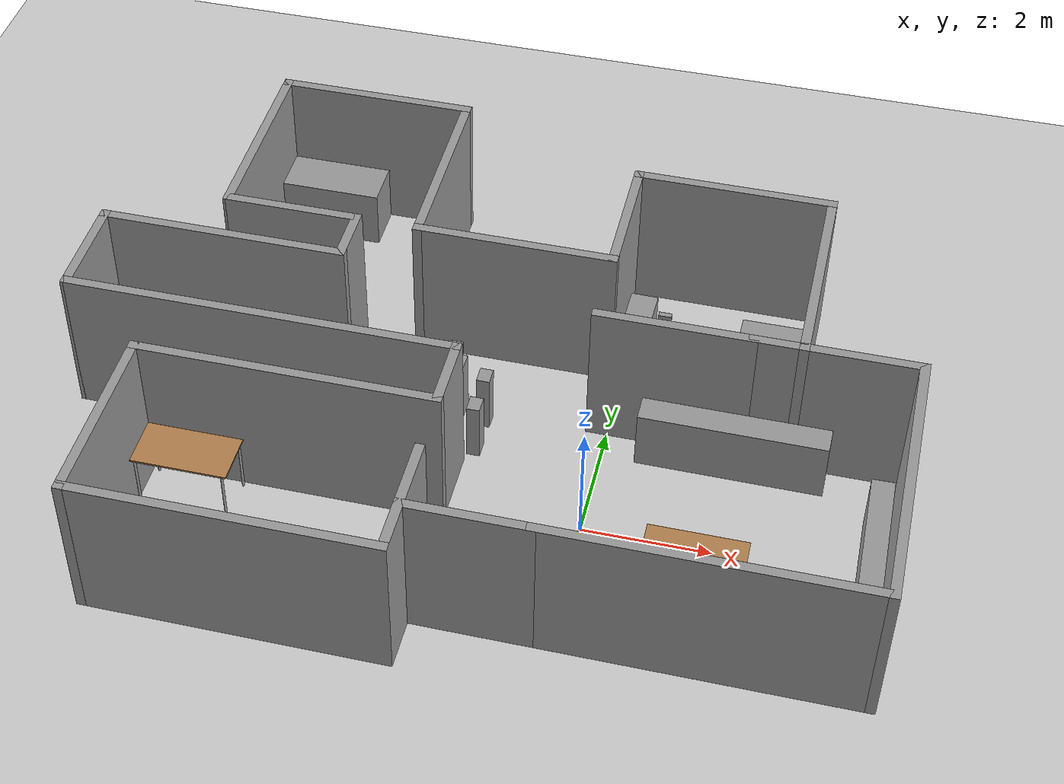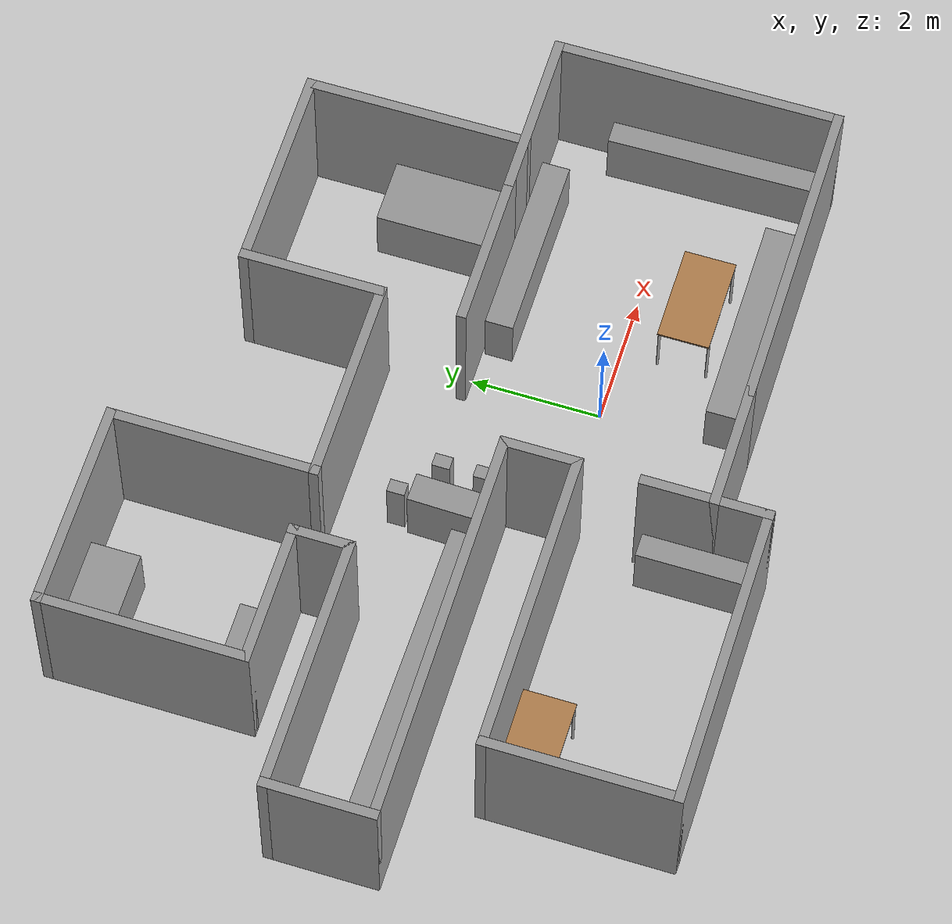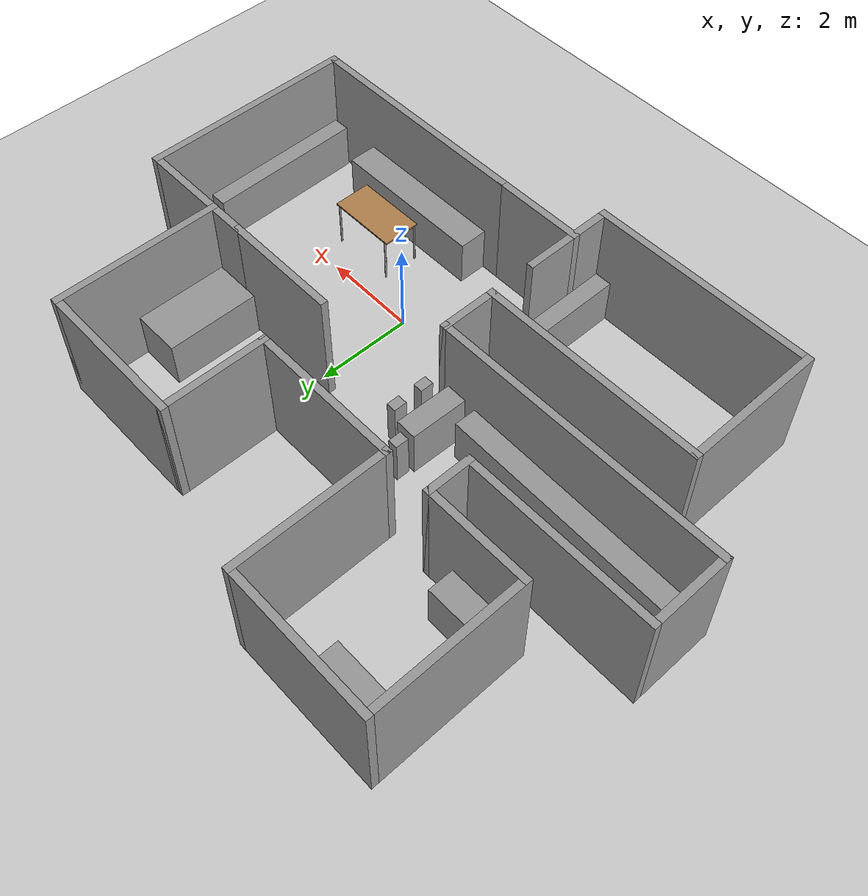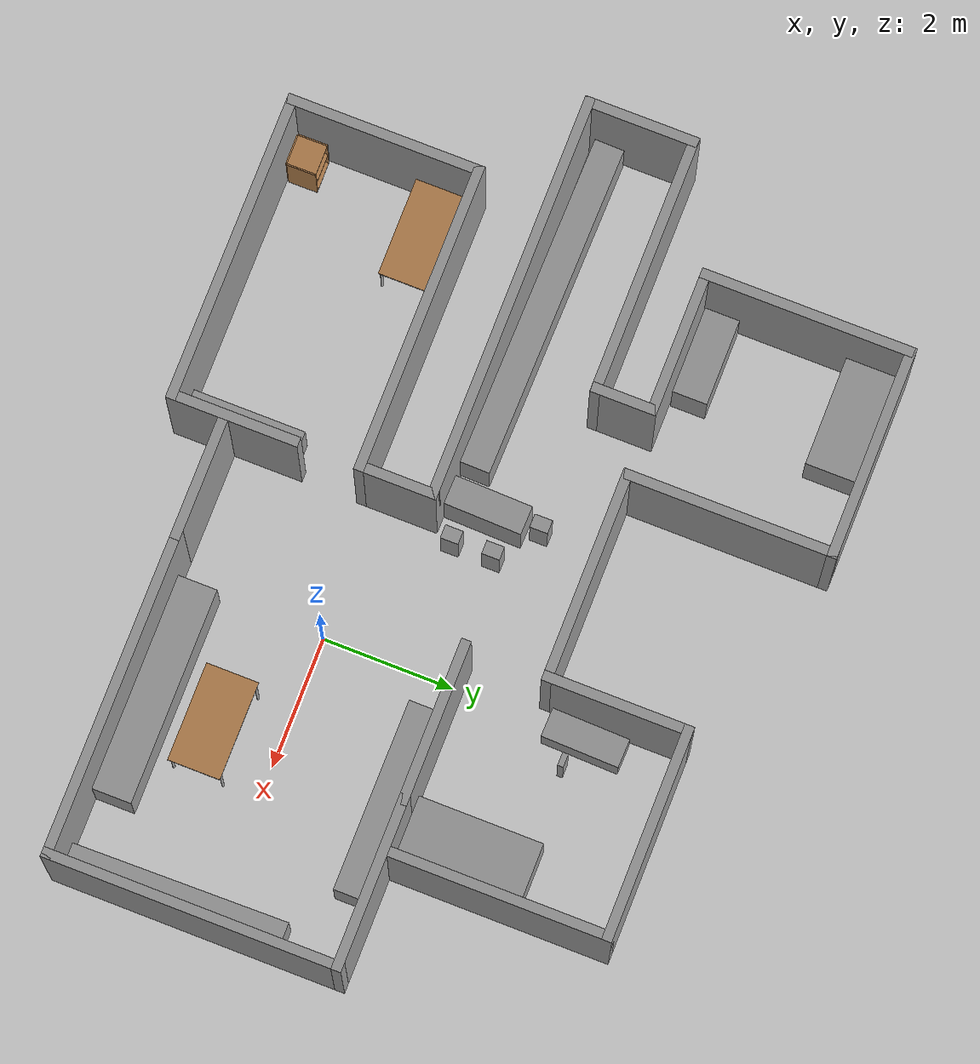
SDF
<sdf version="1.7">
 <world name="default">
  <model name="ground_plane">
   <static>1</static>
   <link name="link">
    <collision name="collision">
     <geometry><plane><normal>0 0 1</normal><size>100 100</size></plane></geometry>
     <surface><friction><ode><mu>100</mu><mu2>50</mu2></ode></friction></surface>
    </collision>
    <visual name="visual">
     <cast_shadows>0</cast_shadows>
     <geometry><plane><normal>0 0 1</normal><size>100 100</size></plane></geometry>
     <material>
      <script><uri>file://media/materials/scripts/gazebo.material</uri><name>Gazebo/Grey</name></script>
     </material>
    </visual>
   </link>
  </model>
  <light name="sun" type="directional">
   <pose>0 0 10 0 -0 0</pose>
   <diffuse>0.8 0.8 0.8 1</diffuse>
   <specular>0.2 0.2 0.2 1</specular>
   <attenuation>
    <range>1000</range>
    <constant>0.9</constant>
    <linear>0.01</linear>
    <quadratic>0.001</quadratic>
   </attenuation>
   <direction>-0.5 0.1 -0.9</direction>
   <spot><inner_angle>0</inner_angle><outer_angle>0</outer_angle><falloff>0</falloff></spot>
  </light>
  <model name="my_house">
   <pose>-1.81661 1.6876 0 0 -0 0</pose>
   <link name="Wall_16">
    <collision name="Wall_16_Collision">
     <geometry><box><size>2.25 0.15 2.5</size></box></geometry>
     <pose>0 0 1.25 0 -0 0</pose>
    </collision>
    <visual name="Wall_16_Visual">
     <pose>0 0 1.25 0 -0 0</pose>
     <geometry><box><size>2.25 0.15 2.5</size></box></geometry>
     <material>
      <script><uri>file://media/materials/scripts/gazebo.material</uri><name>Gazebo/Grey</name></script>
      <ambient>1 1 1 1</ambient>
     </material>
     <meta><layer>0</layer></meta>
    </visual>
    <pose>1.55 2.7 0 0 -0 -1.5708</pose>
   </link>
   <link name="Wall_21">
    <collision name="Wall_21_Collision">
     <geometry><box><size>3.25 0.15 2.5</size></box></geometry>
     <pose>0 0 1.25 0 -0 0</pose>
    </collision>
    <visual name="Wall_21_Visual">
     <pose>0 0 1.25 0 -0 0</pose>
     <geometry><box><size>3.25 0.15 2.5</size></box></geometry>
     <material>
      <script><uri>file://media/materials/scripts/gazebo.material</uri><name>Gazebo/Grey</name></script>
      <ambient>1 1 1 1</ambient>
     </material>
     <meta><layer>0</layer></meta>
    </visual>
    <pose>-0 1.65 0 0 -0 3.14159</pose>
   </link>
   <link name="Wall_23">
    <collision name="Wall_23_Collision">
     <geometry><box><size>3.25 0.15 2.5</size></box></geometry>
     <pose>0 0 1.25 0 -0 0</pose>
    </collision>
    <visual name="Wall_23_Visual">
     <pose>0 0 1.25 0 -0 0</pose>
     <geometry><box><size>3.25 0.15 2.5</size></box></geometry>
     <material>
      <script><uri>file://media/materials/scripts/gazebo.material</uri><name>Gazebo/Grey</name></script>
      <ambient>1 1 1 1</ambient>
     </material>
     <meta><layer>0</layer></meta>
    </visual>
    <pose>-1.55 3.2 0 0 -0 1.5708</pose>
   </link>
   <link name="Wall_24">
    <collision name="Wall_24_Collision">
     <geometry><box><size>3.25 0.15 2.5</size></box></geometry>
     <pose>0 0 1.25 0 -0 0</pose>
    </collision>
    <visual name="Wall_24_Visual">
     <pose>0 0 1.25 0 -0 0</pose>
     <geometry><box><size>3.25 0.15 2.5</size></box></geometry>
     <material>
      <script><uri>file://media/materials/scripts/gazebo.material</uri><name>Gazebo/Grey</name></script>
      <ambient>1 1 1 1</ambient>
     </material>
     <meta><layer>0</layer></meta>
    </visual>
    <pose>-3.1 4.75 0 0 -0 3.14159</pose>
   </link>
   <link name="Wall_25">
    <collision name="Wall_25_Collision">
     <geometry><box><size>3.25 0.15 2.5</size></box></geometry>
     <pose>0 0 1.25 0 -0 0</pose>
    </collision>
    <visual name="Wall_25_Visual">
     <pose>0 0 1.25 0 -0 0</pose>
     <geometry><box><size>3.25 0.15 2.5</size></box></geometry>
     <material>
      <script><uri>file://media/materials/scripts/gazebo.material</uri><name>Gazebo/Grey</name></script>
      <ambient>1 1 1 1</ambient>
     </material>
     <meta><layer>0</layer></meta>
    </visual>
    <pose>-4.65 3.2 0 0 -0 -1.5708</pose>
   </link>
   <link name="Wall_26">
    <collision name="Wall_26_Collision">
     <geometry><box><size>2.25 0.15 2.5</size></box></geometry>
     <pose>0 0 1.25 0 -0 0</pose>
    </collision>
    <visual name="Wall_26_Visual">
     <pose>0 0 1.25 0 -0 0</pose>
     <geometry><box><size>2.25 0.15 2.5</size></box></geometry>
     <material>
      <script><uri>file://media/materials/scripts/gazebo.material</uri><name>Gazebo/Grey</name></script>
      <ambient>1 1 1 1</ambient>
     </material>
     <meta><layer>0</layer></meta>
    </visual>
    <pose>-3.6 1.65 0 0 -0 0</pose>
   </link>
   <link name="Wall_28">
    <collision name="Wall_28_Collision">
     <geometry><box><size>1 0.15 2.5</size></box></geometry>
     <pose>0 0 1.25 0 -0 0</pose>
    </collision>
    <visual name="Wall_28_Visual">
     <pose>0 0 1.25 0 -0 0</pose>
     <geometry><box><size>1 0.15 2.5</size></box></geometry>
     <material>
      <script><uri>file://media/materials/scripts/gazebo.material</uri><name>Gazebo/Grey</name></script>
      <ambient>1 1 1 1</ambient>
     </material>
     <meta><layer>0</layer></meta>
    </visual>
    <pose>-2.55 1.225 0 0 -0 -1.5708</pose>
   </link>
   <link name="Wall_29">
    <collision name="Wall_29_Collision">
     <geometry><box><size>4 0.15 2.5</size></box></geometry>
     <pose>0 0 1.25 0 -0 0</pose>
    </collision>
    <visual name="Wall_29_Visual">
     <pose>0 0 1.25 0 -0 0</pose>
     <geometry><box><size>4 0.15 2.5</size></box></geometry>
     <material>
      <script><uri>file://media/materials/scripts/gazebo.material</uri><name>Gazebo/Grey</name></script>
      <ambient>1 1 1 1</ambient>
     </material>
     <meta><layer>0</layer></meta>
    </visual>
    <pose>-4.475 0.8 0 0 -0 3.14159</pose>
   </link>
   <link name="Wall_30">
    <collision name="Wall_30_Collision">
     <geometry><box><size>1.75 0.15 2.5</size></box></geometry>
     <pose>0 0 1.25 0 -0 0</pose>
    </collision>
    <visual name="Wall_30_Visual">
     <pose>0 0 1.25 0 -0 0</pose>
     <geometry><box><size>1.75 0.15 2.5</size></box></geometry>
     <material>
      <script><uri>file://media/materials/scripts/gazebo.material</uri><name>Gazebo/Grey</name></script>
      <ambient>1 1 1 1</ambient>
     </material>
     <meta><layer>0</layer></meta>
    </visual>
    <pose>-6.4 -0 0 0 -0 -1.5708</pose>
   </link>
   <link name="Wall_31">
    <collision name="Wall_31_Collision">
     <geometry><box><size>6.25 0.15 2.5</size></box></geometry>
     <pose>0 0 1.25 0 -0 0</pose>
    </collision>
    <visual name="Wall_31_Visual">
     <pose>0 0 1.25 0 -0 0</pose>
     <geometry><box><size>6.25 0.15 2.5</size></box></geometry>
     <material>
      <script><uri>file://media/materials/scripts/gazebo.material</uri><name>Gazebo/Grey</name></script>
      <ambient>1 1 1 1</ambient>
     </material>
     <meta><layer>0</layer></meta>
    </visual>
    <pose>-3.35 -0.8 0 0 -0 0</pose>
   </link>
   <link name="Wall_33">
    <collision name="Wall_33_Collision">
     <geometry><box><size>1.25 0.15 2.5</size></box></geometry>
     <pose>0 0 1.25 0 -0 0</pose>
    </collision>
    <visual name="Wall_33_Visual">
     <pose>0 0 1.25 0 -0 0</pose>
     <geometry><box><size>1.25 0.15 2.5</size></box></geometry>
     <material>
      <script><uri>file://media/materials/scripts/gazebo.material</uri><name>Gazebo/Grey</name></script>
      <ambient>1 1 1 1</ambient>
     </material>
     <meta><layer>0</layer></meta>
    </visual>
    <pose>-0.3 -1.35 0 0 -0 -1.5708</pose>
   </link>
   <link name="Wall_34">
    <collision name="Wall_34_Collision">
     <geometry><box><size>4.75 0.15 2.5</size></box></geometry>
     <pose>0 0 1.25 0 -0 0</pose>
    </collision>
    <visual name="Wall_34_Visual">
     <pose>0 0 1.25 0 -0 0</pose>
     <geometry><box><size>4.75 0.15 2.5</size></box></geometry>
     <material>
      <script><uri>file://media/materials/scripts/gazebo.material</uri><name>Gazebo/Grey</name></script>
      <ambient>1 1 1 1</ambient>
     </material>
     <meta><layer>0</layer></meta>
    </visual>
    <pose>-2.6 -1.9 0 0 -0 3.14159</pose>
   </link>
   <link name="Wall_36">
    <collision name="Wall_36_Collision">
     <geometry><box><size>3 0.15 2.5</size></box></geometry>
     <pose>0 0 1.25 0 -0 0</pose>
    </collision>
    <visual name="Wall_36_Visual">
     <pose>0 0 1.25 0 -0 0</pose>
     <geometry><box><size>3 0.15 2.5</size></box></geometry>
     <material>
      <script><uri>file://media/materials/scripts/gazebo.material</uri><name>Gazebo/Grey</name></script>
      <ambient>1 1 1 1</ambient>
     </material>
     <meta><layer>0</layer></meta>
    </visual>
    <pose>-4.9 -3.325 0 0 -0 -1.5708</pose>
   </link>
   <link name="Wall_37">
    <collision name="Wall_37_Collision">
     <geometry><box><size>4.75 0.15 2.5</size></box></geometry>
     <pose>0 0 1.25 0 -0 0</pose>
    </collision>
    <visual name="Wall_37_Visual">
     <pose>0 0 1.25 0 -0 0</pose>
     <geometry><box><size>4.75 0.15 2.5</size></box></geometry>
     <material>
      <script><uri>file://media/materials/scripts/gazebo.material</uri><name>Gazebo/Grey</name></script>
      <ambient>1 1 1 1</ambient>
     </material>
     <meta><layer>0</layer></meta>
    </visual>
    <pose>-2.6 -4.75 0 0 -0 0</pose>
   </link>
   <link name="Wall_38">
    <collision name="Wall_38_Collision">
     <geometry><box><size>2 0.15 2.5</size></box></geometry>
     <pose>0 0 1.25 0 -0 0</pose>
    </collision>
    <visual name="Wall_38_Visual">
     <pose>0 0 1.25 0 -0 0</pose>
     <geometry><box><size>2 0.15 2.5</size></box></geometry>
     <material>
      <script><uri>file://media/materials/scripts/gazebo.material</uri><name>Gazebo/Grey</name></script>
      <ambient>1 1 1 1</ambient>
     </material>
     <meta><layer>0</layer></meta>
    </visual>
    <pose>-0.3 -3.825 0 0 -0 1.5708</pose>
   </link>
   <link name="Wall_40">
    <collision name="Wall_40_Collision">
     <geometry><box><size>2 0.15 2.5</size></box></geometry>
     <pose>0 0 1.25 0 -0 0</pose>
    </collision>
    <visual name="Wall_40_Visual">
     <pose>0 0 1.25 0 -0 0</pose>
     <geometry><box><size>2 0.15 2.5</size></box></geometry>
     <material>
      <script><uri>file://media/materials/scripts/gazebo.material</uri><name>Gazebo/Grey</name></script>
      <ambient>1 1 1 1</ambient>
     </material>
     <meta><layer>0</layer></meta>
    </visual>
    <pose>0.625 -3.95 0 0 -0 3.14159</pose>
   </link>
   <link name="Wall_43">
    <collision name="Wall_43_Collision">
     <geometry><box><size>5 0.15 2.5</size></box></geometry>
     <pose>0 0 1.25 0 -0 0</pose>
    </collision>
    <visual name="Wall_43_Visual">
     <pose>0 0 1.25 0 -0 0</pose>
     <geometry><box><size>5 0.15 2.5</size></box></geometry>
     <material>
      <script><uri>file://media/materials/scripts/gazebo.material</uri><name>Gazebo/Grey</name></script>
      <ambient>1 1 1 1</ambient>
     </material>
     <meta><layer>0</layer></meta>
    </visual>
    <pose>3.975 -3.95 0 0 -0 0</pose>
   </link>
   <link name="Wall_44">
    <collision name="Wall_44_Collision">
     <geometry><box><size>4.5 0.15 2.5</size></box></geometry>
     <pose>0 0 1.25 0 -0 0</pose>
    </collision>
    <visual name="Wall_44_Visual">
     <pose>0 0 1.25 0 -0 0</pose>
     <geometry><box><size>4.5 0.15 2.5</size></box></geometry>
     <material>
      <script><uri>file://media/materials/scripts/gazebo.material</uri><name>Gazebo/Grey</name></script>
      <ambient>1 1 1 1</ambient>
     </material>
     <meta><layer>0</layer></meta>
    </visual>
    <pose>6.4 -1.775 0 0 -0 1.5708</pose>
   </link>
   <link name="Wall_45">
    <collision name="Wall_45_Collision">
     <geometry><box><size>2.65 0.15 2.5</size></box></geometry>
     <pose>0 0 1.25 0 -0 0</pose>
    </collision>
    <visual name="Wall_45_Visual">
     <pose>0 0 1.25 0 -0 0</pose>
     <geometry><box><size>2.65 0.15 2.5</size></box></geometry>
     <material>
      <script><uri>file://media/materials/scripts/gazebo.material</uri><name>Gazebo/Grey</name></script>
      <ambient>1 1 1 1</ambient>
     </material>
     <meta><layer>0</layer></meta>
    </visual>
    <pose>5.15 0.4 0 0 -0 3.14159</pose>
   </link>
   <link name="Wall_47">
    <collision name="Wall_47_Collision">
     <geometry><box><size>3.25 0.15 2.5</size></box></geometry>
     <pose>0 0 1.25 0 -0 0</pose>
    </collision>
    <visual name="Wall_47_Visual">
     <pose>0 0 1.25 0 -0 0</pose>
     <geometry><box><size>3.25 0.15 2.5</size></box></geometry>
     <material>
      <script><uri>file://media/materials/scripts/gazebo.material</uri><name>Gazebo/Grey</name></script>
      <ambient>1 1 1 1</ambient>
     </material>
     <meta><layer>0</layer></meta>
    </visual>
    <pose>3.1 3.75 0 0 -0 0</pose>
   </link>
   <link name="Wall_48">
    <collision name="Wall_48_Collision">
     <geometry><box><size>3.5 0.15 2.5</size></box></geometry>
     <pose>0 0 1.25 0 -0 0</pose>
    </collision>
    <visual name="Wall_48_Visual">
     <pose>0 0 1.25 0 -0 0</pose>
     <geometry><box><size>3.5 0.15 2.5</size></box></geometry>
     <material>
      <script><uri>file://media/materials/scripts/gazebo.material</uri><name>Gazebo/Grey</name></script>
      <ambient>1 1 1 1</ambient>
     </material>
     <meta><layer>0</layer></meta>
    </visual>
    <pose>4.65 2.075 0 0 -0 -1.5708</pose>
   </link>
   <link name="Wall_8">
    <collision name="Wall_8_Collision">
     <geometry><box><size>2.5 0.15 2.5</size></box></geometry>
     <pose>0 0 1.25 0 -0 0</pose>
    </collision>
    <visual name="Wall_8_Visual">
     <pose>0 0 1.25 0 -0 0</pose>
     <geometry><box><size>2.5 0.15 2.5</size></box></geometry>
     <material>
      <script><uri>file://media/materials/scripts/gazebo.material</uri><name>Gazebo/Grey</name></script>
      <ambient>1 1 1 1</ambient>
     </material>
     <meta><layer>0</layer></meta>
    </visual>
    <pose>2.725 0.4 0 0 -0 0</pose>
   </link>
   <static>1</static>
  </model>
  <gravity>0 0 -9.8</gravity>
  <magnetic_field>6e-06 2.3e-05 -4.2e-05</magnetic_field>
  <atmosphere type="adiabatic"/>
  <physics type="ode">
   <max_step_size>0.001</max_step_size>
   <real_time_factor>1</real_time_factor>
   <real_time_update_rate>1000</real_time_update_rate>
  </physics>
  <scene><ambient>0.4 0.4 0.4 1</ambient><background>0.7 0.7 0.7 1</background><shadows>1</shadows></scene>
  <audio><device>default</device></audio>
  <spherical_coordinates>
   <surface_model>EARTH_WGS84</surface_model>
   <latitude_deg>0</latitude_deg>
   <longitude_deg>0</longitude_deg>
   <elevation>0</elevation>
   <heading_deg>0</heading_deg>
  </spherical_coordinates>
  <model name="table">
   <static>1</static>
   <link name="link">
    <collision name="surface">
     <pose>0 0 1 0 -0 0</pose>
     <geometry><box><size>1.5 0.8 0.03</size></box></geometry>
     <surface><friction><ode><mu>0.6</mu><mu2>0.6</mu2></ode></friction></surface>
    </collision>
    <visual name="visual1">
     <pose>0 0 1 0 -0 0</pose>
     <geometry><box><size>1.5 0.8 0.03</size></box></geometry>
     <material>
      <script><uri>file://media/materials/scripts/gazebo.material</uri><name>Gazebo/Wood</name></script>
     </material>
    </visual>
    <collision name="front_left_leg">
     <pose>0.68 0.38 0.5 0 -0 0</pose>
     <geometry><cylinder><radius>0.02</radius><length>1</length></cylinder></geometry>
    </collision>
    <visual name="front_left_leg">
     <pose>0.68 0.38 0.5 0 -0 0</pose>
     <geometry><cylinder><radius>0.02</radius><length>1</length></cylinder></geometry>
     <material>
      <script><uri>file://media/materials/scripts/gazebo.material</uri><name>Gazebo/Grey</name></script>
     </material>
    </visual>
    <collision name="front_right_leg">
     <pose>0.68 -0.38 0.5 0 -0 0</pose>
     <geometry><cylinder><radius>0.02</radius><length>1</length></cylinder></geometry>
    </collision>
    <visual name="front_right_leg">
     <pose>0.68 -0.38 0.5 0 -0 0</pose>
     <geometry><cylinder><radius>0.02</radius><length>1</length></cylinder></geometry>
     <material>
      <script><uri>file://media/materials/scripts/gazebo.material</uri><name>Gazebo/Grey</name></script>
     </material>
    </visual>
    <collision name="back_right_leg">
     <pose>-0.68 -0.38 0.5 0 -0 0</pose>
     <geometry><cylinder><radius>0.02</radius><length>1</length></cylinder></geometry>
    </collision>
    <visual name="back_right_leg">
     <pose>-0.68 -0.38 0.5 0 -0 0</pose>
     <geometry><cylinder><radius>0.02</radius><length>1</length></cylinder></geometry>
     <material>
      <script><uri>file://media/materials/scripts/gazebo.material</uri><name>Gazebo/Grey</name></script>
     </material>
    </visual>
    <collision name="back_left_leg">
     <pose>-0.68 0.38 0.5 0 -0 0</pose>
     <geometry><cylinder><radius>0.02</radius><length>1</length></cylinder></geometry>
    </collision>
    <visual name="back_left_leg">
     <pose>-0.68 0.38 0.5 0 -0 0</pose>
     <geometry><cylinder><radius>0.02</radius><length>1</length></cylinder></geometry>
     <material>
      <script><uri>file://media/materials/scripts/gazebo.material</uri><name>Gazebo/Grey</name></script>
     </material>
    </visual>
   </link>
   <pose>1.81891 -0.938431 0 0 -0 0</pose>
  </model>
  <model name="cabinet">
   <static>1</static>
   <link name="cabinet_bottom_plate">
    <inertial>
     <pose>0 0 -1 0 -0 0</pose>
     <inertia><ixx>2.05</ixx><ixy>0</ixy><ixz>0</ixz><iyy>2.05</iyy><iyz>0</iyz><izz>2.05</izz></inertia>
     <mass>25</mass>
    </inertial>
    <collision name="cabinet_bottom_plate_geom">
     <pose>0 0 0.01 0 -0 0</pose>
     <geometry><box><size>0.45 0.45 0.02</size></box></geometry>
    </collision>
    <visual name="cabinet_bottom_plate_geom_visual">
     <pose>0 0 0.01 0 -0 0</pose>
     <geometry><box><size>0.45 0.45 0.02</size></box></geometry>
     <material>
      <script><uri>file://media/materials/scripts/gazebo.material</uri><name>Gazebo/Wood</name></script>
     </material>
    </visual>
    <collision name="cabinet_bottom_plate_geom_cabinet_back_plate">
     <pose>0.235 0 0.51 0 -0 0</pose>
     <geometry><box><size>0.02 0.45 1.02</size></box></geometry>
    </collision>
    <visual name="cabinet_bottom_plate_geom_cabinet_back_plate_visual">
     <pose>0.235 0 0.51 0 -0 0</pose>
     <geometry><box><size>0.02 0.45 1.02</size></box></geometry>
     <material>
      <script><uri>file://media/materials/scripts/gazebo.material</uri><name>Gazebo/Wood</name></script>
     </material>
    </visual>
    <collision name="cabinet_bottom_plate_geom_cabinet_left_plate">
     <pose>0 0.235 0.51 0 -0 0</pose>
     <geometry><box><size>0.45 0.02 1.02</size></box></geometry>
    </collision>
    <visual name="cabinet_bottom_plate_geom_cabinet_left_plate_visual">
     <pose>0 0.235 0.51 0 -0 0</pose>
     <geometry><box><size>0.45 0.02 1.02</size></box></geometry>
     <material>
      <script><uri>file://media/materials/scripts/gazebo.material</uri><name>Gazebo/Wood</name></script>
     </material>
    </visual>
    <collision name="cabinet_bottom_plate_geom_cabinet_middle_plate">
     <pose>0 0 0.51 0 -0 0</pose>
     <geometry><box><size>0.45 0.45 0.02</size></box></geometry>
    </collision>
    <visual name="cabinet_bottom_plate_geom_cabinet_middle_plate_visual">
     <pose>0 0 0.51 0 -0 0</pose>
     <geometry><box><size>0.45 0.45 0.02</size></box></geometry>
     <material>
      <script><uri>file://media/materials/scripts/gazebo.material</uri><name>Gazebo/Wood</name></script>
     </material>
    </visual>
    <collision name="cabinet_bottom_plate_geom_cabinet_right_plate">
     <pose>0 -0.235 0.51 0 -0 0</pose>
     <geometry><box><size>0.45 0.02 1.02</size></box></geometry>
    </collision>
    <visual name="cabinet_bottom_plate_geom_cabinet_right_plate_visual">
     <pose>0 -0.235 0.51 0 -0 0</pose>
     <geometry><box><size>0.45 0.02 1.02</size></box></geometry>
     <material>
      <script><uri>file://media/materials/scripts/gazebo.material</uri><name>Gazebo/Wood</name></script>
     </material>
    </visual>
    <collision name="cabinet_bottom_plate_geom_cabinet_top_plate">
     <pose>0 0 1.01 0 -0 0</pose>
     <geometry><box><size>0.45 0.45 0.02</size></box></geometry>
    </collision>
    <visual name="cabinet_bottom_plate_geom_cabinet_top_plate_visual">
     <pose>0 0 1.01 0 -0 0</pose>
     <geometry><box><size>0.45 0.45 0.02</size></box></geometry>
     <material>
      <script><uri>file://media/materials/scripts/gazebo.material</uri><name>Gazebo/Wood</name></script>
     </material>
    </visual>
   </link>
   <pose>-6.37624 -2.74017 0 0 -0 -1.56242</pose>
  </model>
  <model name="table_0">
   <static>1</static>
   <link name="link">
    <collision name="surface">
     <pose>0 0 1 0 -0 0</pose>
     <geometry><box><size>1.5 0.8 0.03</size></box></geometry>
     <surface><friction><ode><mu>0.6</mu><mu2>0.6</mu2></ode></friction></surface>
    </collision>
    <visual name="visual1">
     <pose>0 0 1 0 -0 0</pose>
     <geometry><box><size>1.5 0.8 0.03</size></box></geometry>
     <material>
      <script><uri>file://media/materials/scripts/gazebo.material</uri><name>Gazebo/Wood</name></script>
     </material>
    </visual>
    <collision name="front_left_leg">
     <pose>0.68 0.38 0.5 0 -0 0</pose>
     <geometry><cylinder><radius>0.02</radius><length>1</length></cylinder></geometry>
    </collision>
    <visual name="front_left_leg">
     <pose>0.68 0.38 0.5 0 -0 0</pose>
     <geometry><cylinder><radius>0.02</radius><length>1</length></cylinder></geometry>
     <material>
      <script><uri>file://media/materials/scripts/gazebo.material</uri><name>Gazebo/Grey</name></script>
     </material>
    </visual>
    <collision name="front_right_leg">
     <pose>0.68 -0.38 0.5 0 -0 0</pose>
     <geometry><cylinder><radius>0.02</radius><length>1</length></cylinder></geometry>
    </collision>
    <visual name="front_right_leg">
     <pose>0.68 -0.38 0.5 0 -0 0</pose>
     <geometry><cylinder><radius>0.02</radius><length>1</length></cylinder></geometry>
     <material>
      <script><uri>file://media/materials/scripts/gazebo.material</uri><name>Gazebo/Grey</name></script>
     </material>
    </visual>
    <collision name="back_right_leg">
     <pose>-0.68 -0.38 0.5 0 -0 0</pose>
     <geometry><cylinder><radius>0.02</radius><length>1</length></cylinder></geometry>
    </collision>
    <visual name="back_right_leg">
     <pose>-0.68 -0.38 0.5 0 -0 0</pose>
     <geometry><cylinder><radius>0.02</radius><length>1</length></cylinder></geometry>
     <material>
      <script><uri>file://media/materials/scripts/gazebo.material</uri><name>Gazebo/Grey</name></script>
     </material>
    </visual>
    <collision name="back_left_leg">
     <pose>-0.68 0.38 0.5 0 -0 0</pose>
     <geometry><cylinder><radius>0.02</radius><length>1</length></cylinder></geometry>
    </collision>
    <visual name="back_left_leg">
     <pose>-0.68 0.38 0.5 0 -0 0</pose>
     <geometry><cylinder><radius>0.02</radius><length>1</length></cylinder></geometry>
     <material>
      <script><uri>file://media/materials/scripts/gazebo.material</uri><name>Gazebo/Grey</name></script>
     </material>
    </visual>
   </link>
   <pose>-5.86325 -0.740683 0 0 -0 0</pose>
  </model>
  <model name="unit_box">
   <pose>1.6873 -1.88758 0.49971 0 -0.000176 3.9e-05</pose>
   <link name="link">
    <inertial>
     <mass>1</mass>
     <inertia>
      <ixx>0.166667</ixx>
      <ixy>0</ixy>
      <ixz>0</ixz>
      <iyy>0.166667</iyy>
      <iyz>0</iyz>
      <izz>0.166667</izz>
     </inertia>
    </inertial>
    <collision name="collision"><geometry><box><size>3.30484 0.598993 1</size></box></geometry></collision>
    <visual name="visual">
     <geometry><box><size>3.30484 0.598993 1</size></box></geometry>
     <material>
      <script><name>Gazebo/Grey</name><uri>file://media/materials/scripts/gazebo.material</uri></script>
     </material>
    </visual>
   </link>
  </model>
  <model name="unit_box_0">
   <pose>-2.50808 1.57228 0.533254 0 0 -0.023744</pose>
   <link name="link">
    <inertial>
     <mass>1</mass>
     <inertia>
      <ixx>0.166667</ixx>
      <ixy>0</ixy>
      <ixz>0</ixz>
      <iyy>0.166667</iyy>
      <iyz>0</iyz>
      <izz>0.166667</izz>
     </inertia>
    </inertial>
    <collision name="collision"><geometry><box><size>0.440376 1.18996 1.0669</size></box></geometry></collision>
    <visual name="visual">
     <geometry><box><size>0.440376 1.18996 1.0669</size></box></geometry>
     <material>
      <script><name>Gazebo/Grey</name><uri>file://media/materials/scripts/gazebo.material</uri></script>
     </material>
    </visual>
   </link>
  </model>
  <model name="unit_box_1">
   <pose>-5.53153 1.23535 0.497602 -1.7e-05 0.000936 -0.017898</pose>
   <link name="link">
    <inertial>
     <mass>1</mass>
     <inertia>
      <ixx>0.166667</ixx>
      <ixy>0</ixy>
      <ixz>0</ixz>
      <iyy>0.166667</iyy>
      <iyz>0</iyz>
      <izz>0.166667</izz>
     </inertia>
    </inertial>
    <collision name="collision"><geometry><box><size>5.14231 0.453468 1</size></box></geometry></collision>
    <visual name="visual">
     <geometry><box><size>5.14231 0.453468 1</size></box></geometry>
     <material>
      <script><name>Gazebo/Grey</name><uri>file://media/materials/scripts/gazebo.material</uri></script>
     </material>
    </visual>
   </link>
  </model>
  <model name="unit_box_2">
   <pose>-5.68658 3.6958 0.5 -3e-06 -1e-06 -0</pose>
   <link name="link">
    <inertial>
     <mass>1</mass>
     <inertia>
      <ixx>0.166667</ixx>
      <ixy>0</ixy>
      <ixz>0</ixz>
      <iyy>0.166667</iyy>
      <iyz>0</iyz>
      <izz>0.166667</izz>
     </inertia>
    </inertial>
    <collision name="collision"><geometry><box><size>1.32035 0.530571 1</size></box></geometry></collision>
    <visual name="visual">
     <geometry><box><size>1.32035 0.530571 1</size></box></geometry>
     <material>
      <script><name>Gazebo/Grey</name><uri>file://media/materials/scripts/gazebo.material</uri></script>
     </material>
    </visual>
   </link>
  </model>
  <model name="unit_box_3">
   <pose>-5.56158 5.96591 0.499996 7e-06 2e-06 -6e-06</pose>
   <link name="link">
    <inertial>
     <mass>1</mass>
     <inertia>
      <ixx>0.166667</ixx>
      <ixy>0</ixy>
      <ixz>0</ixz>
      <iyy>0.166667</iyy>
      <iyz>0</iyz>
      <izz>0.166667</izz>
     </inertia>
    </inertial>
    <collision name="collision"><geometry><box><size>1.66003 0.76587 1</size></box></geometry></collision>
    <visual name="visual">
     <geometry><box><size>1.66003 0.76587 1</size></box></geometry>
     <material>
      <script><name>Gazebo/Grey</name><uri>file://media/materials/scripts/gazebo.material</uri></script>
     </material>
    </visual>
   </link>
  </model>
  <model name="unit_box_4">
   <pose>1.98096 1.75488 0.49985 1e-06 -0.000103 -0.003773</pose>
   <link name="link">
    <inertial>
     <mass>1</mass>
     <inertia>
      <ixx>0.166667</ixx>
      <ixy>0</ixy>
      <ixz>0</ixz>
      <iyy>0.166667</iyy>
      <iyz>0</iyz>
      <izz>0.166667</izz>
     </inertia>
    </inertial>
    <collision name="collision"><geometry><box><size>2.91546 0.432964 1</size></box></geometry></collision>
    <visual name="visual">
     <geometry><box><size>2.91546 0.432964 1</size></box></geometry>
     <material>
      <script><name>Gazebo/Grey</name><uri>file://media/materials/scripts/gazebo.material</uri></script>
     </material>
    </visual>
   </link>
  </model>
  <model name="unit_box_5">
   <pose>4.3076 -0.51177 0.499725 0.000169 -3e-06 0.015335</pose>
   <link name="link">
    <inertial>
     <mass>1</mass>
     <inertia>
      <ixx>0.166667</ixx>
      <ixy>0</ixy>
      <ixz>0</ixz>
      <iyy>0.166667</iyy>
      <iyz>0</iyz>
      <izz>0.166667</izz>
     </inertia>
    </inertial>
    <collision name="collision"><geometry><box><size>0.350293 3.27503 1</size></box></geometry></collision>
    <visual name="visual">
     <geometry><box><size>0.350293 3.27503 1</size></box></geometry>
     <material>
      <script><name>Gazebo/Grey</name><uri>file://media/materials/scripts/gazebo.material</uri></script>
     </material>
    </visual>
   </link>
  </model>
  <model name="unit_box_6">
   <pose>-1.93015 1.23721 0.5 -2e-06 1e-06 -0.000161</pose>
   <link name="link">
    <inertial>
     <mass>1</mass>
     <inertia>
      <ixx>0.166667</ixx>
      <ixy>0</ixy>
      <ixz>0</ixz>
      <iyy>0.166667</iyy>
      <iyz>0</iyz>
      <izz>0.166667</izz>
     </inertia>
    </inertial>
    <collision name="collision"><geometry><box><size>0.205421 0.273153 1</size></box></geometry></collision>
    <visual name="visual">
     <geometry><box><size>0.205421 0.273153 1</size></box></geometry>
     <material>
      <script><name>Gazebo/Grey</name><uri>file://media/materials/scripts/gazebo.material</uri></script>
     </material>
    </visual>
   </link>
  </model>
  <model name="unit_box_6_clone">
   <pose>-1.93096 1.87206 0.5 -2e-06 -0 -5.2e-05</pose>
   <link name="link">
    <inertial>
     <mass>1</mass>
     <inertia>
      <ixx>0.166667</ixx>
      <ixy>0</ixy>
      <ixz>0</ixz>
      <iyy>0.166667</iyy>
      <iyz>0</iyz>
      <izz>0.166667</izz>
     </inertia>
    </inertial>
    <collision name="collision"><geometry><box><size>0.205421 0.273153 1</size></box></geometry></collision>
    <visual name="visual">
     <geometry><box><size>0.205421 0.273153 1</size></box></geometry>
     <material>
      <script><name>Gazebo/Grey</name><uri>file://media/materials/scripts/gazebo.material</uri></script>
     </material>
    </visual>
   </link>
  </model>
  <model name="unit_box_6_clone_0">
   <pose>-2.5388 2.3731 0.5 2e-06 1e-06 -5.8e-05</pose>
   <link name="link">
    <inertial>
     <mass>1</mass>
     <inertia>
      <ixx>0.166667</ixx>
      <ixy>0</ixy>
      <ixz>0</ixz>
      <iyy>0.166667</iyy>
      <iyz>0</iyz>
      <izz>0.166667</izz>
     </inertia>
    </inertial>
    <collision name="collision"><geometry><box><size>0.205421 0.273153 1</size></box></geometry></collision>
    <visual name="visual">
     <geometry><box><size>0.205421 0.273153 1</size></box></geometry>
     <material>
      <script><name>Gazebo/Grey</name><uri>file://media/materials/scripts/gazebo.material</uri></script>
     </material>
    </visual>
   </link>
  </model>
  <model name="unit_box_6_clone_1">
   <pose>0.531128 3.89219 0.5 1e-06 -4e-06 -0.000202</pose>
   <link name="link">
    <inertial>
     <mass>1</mass>
     <inertia>
      <ixx>0.166667</ixx>
      <ixy>0</ixy>
      <ixz>0</ixz>
      <iyy>0.166667</iyy>
      <iyz>0</iyz>
      <izz>0.166667</izz>
     </inertia>
    </inertial>
    <collision name="collision"><geometry><box><size>0.205421 0.0878379 1</size></box></geometry></collision>
    <visual name="visual">
     <geometry><box><size>0.205421 0.0878379 1</size></box></geometry>
     <material>
      <script><name>Gazebo/Grey</name><uri>file://media/materials/scripts/gazebo.material</uri></script>
     </material>
    </visual>
   </link>
  </model>
  <model name="unit_box_0_clone">
   <pose>0.065794 4.0617 0.319211 0 0 -0.023865</pose>
   <link name="link">
    <inertial>
     <mass>1</mass>
     <inertia>
      <ixx>0.166667</ixx>
      <ixy>0</ixy>
      <ixz>0</ixz>
      <iyy>0.166667</iyy>
      <iyz>0</iyz>
      <izz>0.166667</izz>
     </inertia>
    </inertial>
    <collision name="collision"><geometry><box><size>0.440376 1.18995 0.638422</size></box></geometry></collision>
    <visual name="visual">
     <geometry><box><size>0.440376 1.18995 0.638422</size></box></geometry>
     <material>
      <script><name>Gazebo/Grey</name><uri>file://media/materials/scripts/gazebo.material</uri></script>
     </material>
    </visual>
   </link>
  </model>
  <model name="unit_box_7">
   <pose>2.25271 3.12441 0.499991 1e-05 -0 0</pose>
   <link name="link">
    <inertial>
     <mass>1</mass>
     <inertia>
      <ixx>0.166667</ixx>
      <ixy>0</ixy>
      <ixz>0</ixz>
      <iyy>0.166667</iyy>
      <iyz>0</iyz>
      <izz>0.166667</izz>
     </inertia>
    </inertial>
    <collision name="collision"><geometry><box><size>1 1.89619 1</size></box></geometry></collision>
    <visual name="visual">
     <geometry><box><size>1 1.89619 1</size></box></geometry>
     <material>
      <script><name>Gazebo/Grey</name><uri>file://media/materials/scripts/gazebo.material</uri></script>
     </material>
    </visual>
   </link>
  </model>
  <model name="unit_box_8">
   <pose>-2.38226 -2.121 0.499995 6e-06 -0 3.9e-05</pose>
   <link name="link">
    <inertial>
     <mass>1</mass>
     <inertia>
      <ixx>0.166667</ixx>
      <ixy>0</ixy>
      <ixz>0</ixz>
      <iyy>0.166667</iyy>
      <iyz>0</iyz>
      <izz>0.166667</izz>
     </inertia>
    </inertial>
    <collision name="collision"><geometry><box><size>0.361108 1.71866 1</size></box></geometry></collision>
    <visual name="visual">
     <geometry><box><size>0.361108 1.71866 1</size></box></geometry>
     <material>
      <script><name>Gazebo/Grey</name><uri>file://media/materials/scripts/gazebo.material</uri></script>
     </material>
    </visual>
   </link>
  </model>
 </world>
</sdf>
